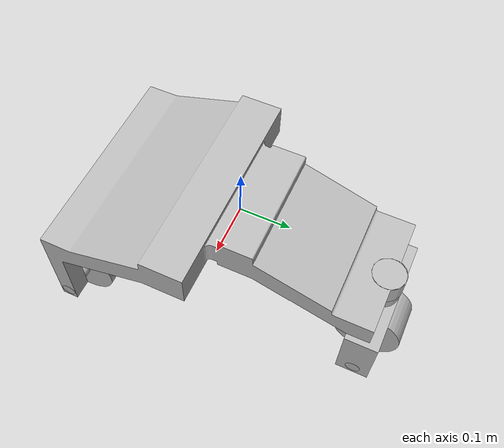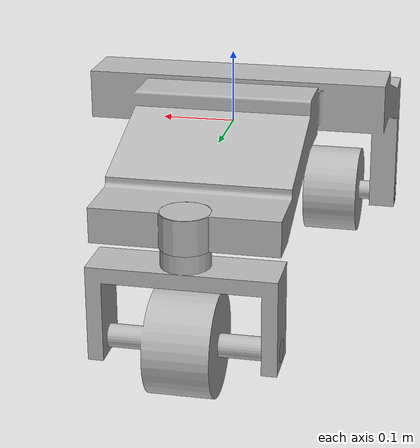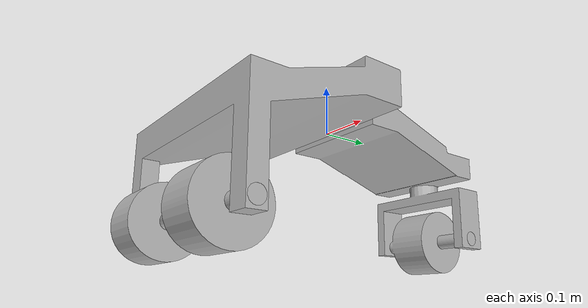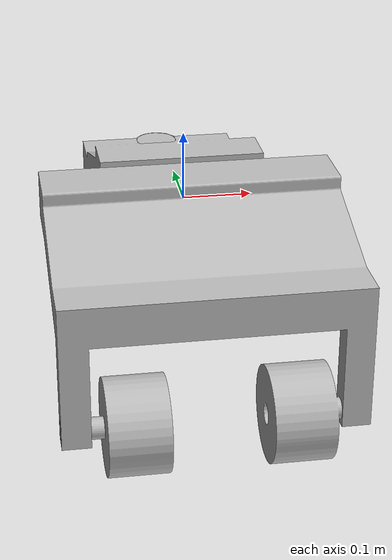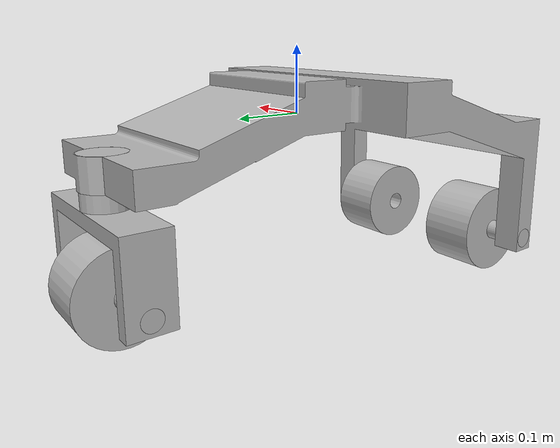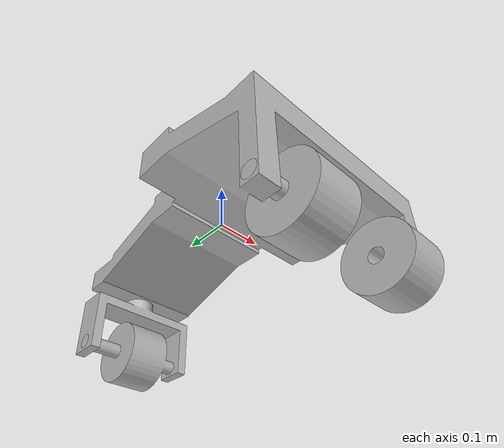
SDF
<?xml version='1.0'?>
<sdf version='1.7'>
  <model name='simple_model'>
    <link name='base_link'>
      <inertial>
        <pose>0 -0.058195 -0.008617 0 -0 0</pose>
        <mass>11.049</mass>
        <inertia>
          <ixx>0.31891</ixx>
          <ixy>1.2437e-08</ixy>
          <ixz>-2.3489e-09</ixz>
          <iyy>0.14912</iyy>
          <iyz>-0.017023</iyz>
          <izz>0.43572</izz>
        </inertia>
      </inertial>
      <self_collide>0</self_collide>
      <enable_wind>0</enable_wind>
      <kinematic>0</kinematic>
      <pose>0 0 0 0 -0 0</pose>
      <visual name='base_link_visual'>
        <pose>0 0 0 0 -0 0</pose>
        <geometry>
          <mesh>
            <scale>1 1 1</scale>
            <uri>/home/chahak/Octo_Crawler/src/Assem2/meshes/base_link.STL</uri>
          </mesh>
        </geometry>
        <material>
          <shader type='pixel'/>
        </material>
        <transparency>0</transparency>
        <cast_shadows>1</cast_shadows>
      </visual>
      <collision name='base_link_collision'>
        <laser_retro>0</laser_retro>
        <max_contacts>10</max_contacts>
        <pose>0 0 0 0 -0 0</pose>
        <geometry>
          <mesh>
            <uri>/home/chahak/Octo_Crawler/src/Assem2/meshes/base_link.STL</uri>
            <scale>1 1 1</scale>
          </mesh>
        </geometry>
        <surface>
          <friction>
            <ode>
              <mu>1</mu>
              <mu2>1</mu2>
              <fdir1>0 0 0</fdir1>
              <slip1>0</slip1>
              <slip2>0</slip2>
            </ode>
            <torsional>
              <coefficient>1</coefficient>
              <patch_radius>0</patch_radius>
              <surface_radius>0</surface_radius>
              <use_patch_radius>1</use_patch_radius>
              <ode>
                <slip>0</slip>
              </ode>
            </torsional>
          </friction>
          <bounce>
            <restitution_coefficient>0</restitution_coefficient>
            <threshold>1e+06</threshold>
          </bounce>
          <contact>
            <collide_without_contact>0</collide_without_contact>
            <collide_without_contact_bitmask>1</collide_without_contact_bitmask>
            <collide_bitmask>1</collide_bitmask>
            <ode>
              <soft_cfm>0</soft_cfm>
              <soft_erp>0.2</soft_erp>
              <kp>1e+13</kp>
              <kd>1</kd>
              <max_vel>0.01</max_vel>
              <min_depth>0</min_depth>
            </ode>
            <bullet>
              <split_impulse>1</split_impulse>
              <split_impulse_penetration_threshold>-0.01</split_impulse_penetration_threshold>
              <soft_cfm>0</soft_cfm>
              <soft_erp>0.2</soft_erp>
              <kp>1e+13</kp>
              <kd>1</kd>
            </bullet>
          </contact>
        </surface>
      </collision>
    </link>
    <link name='front_steering'>
      <pose>0 0.29502 -0.009979 -3.14159 -0 1.5708</pose>
      <inertial>
        <pose>-0 0 0.098632 0 -0 0</pose>
        <mass>0.78452</mass>
        <inertia>
          <ixx>0.0061783</ixx>
          <ixy>-8.2078e-19</ixy>
          <ixz>3.7405e-18</ixz>
          <iyy>0.0018851</iyy>
          <iyz>-1.2848e-19</iyz>
          <izz>0.0048191</izz>
        </inertia>
      </inertial>
      <self_collide>0</self_collide>
      <enable_wind>0</enable_wind>
      <kinematic>0</kinematic>
      <visual name='front_steering_visual'>
        <pose>0 0 0 0 -0 0</pose>
        <geometry>
          <mesh>
            <scale>1 1 1</scale>
            <uri>/home/chahak/Octo_Crawler/src/Assem2/meshes/front_steering.STL</uri>
          </mesh>
        </geometry>
        <material>
          <shader type='pixel'/>
        </material>
        <transparency>0</transparency>
        <cast_shadows>1</cast_shadows>
      </visual>
      <collision name='front_steering_collision'>
        <laser_retro>0</laser_retro>
        <max_contacts>10</max_contacts>
        <pose>0 0 0 0 -0 0</pose>
        <geometry>
          <mesh>
            <uri>/home/chahak/Octo_Crawler/src/Assem2/meshes/front_steering.STL</uri>
            <scale>1 1 1</scale>
          </mesh>
        </geometry>
        <surface>
          <friction>
            <ode>
              <mu>1</mu>
              <mu2>1</mu2>
              <fdir1>0 0 0</fdir1>
              <slip1>0</slip1>
              <slip2>0</slip2>
            </ode>
            <torsional>
              <coefficient>1</coefficient>
              <patch_radius>0</patch_radius>
              <surface_radius>0</surface_radius>
              <use_patch_radius>1</use_patch_radius>
              <ode>
                <slip>0</slip>
              </ode>
            </torsional>
          </friction>
          <bounce>
            <restitution_coefficient>0</restitution_coefficient>
            <threshold>1e+06</threshold>
          </bounce>
          <contact>
            <collide_without_contact>0</collide_without_contact>
            <collide_without_contact_bitmask>1</collide_without_contact_bitmask>
            <collide_bitmask>1</collide_bitmask>
            <ode>
              <soft_cfm>0</soft_cfm>
              <soft_erp>0.2</soft_erp>
              <kp>1e+13</kp>
              <kd>1</kd>
              <max_vel>0.01</max_vel>
              <min_depth>0</min_depth>
            </ode>
            <bullet>
              <split_impulse>1</split_impulse>
              <split_impulse_penetration_threshold>-0.01</split_impulse_penetration_threshold>
              <soft_cfm>0</soft_cfm>
              <soft_erp>0.2</soft_erp>
              <kp>1e+13</kp>
              <kd>1</kd>
            </bullet>
          </contact>
        </surface>
      </collision>
    </link>
    <link name='front_wheel'>
      <pose>-1e-06 0.29502 -0.198859 -1.57071 -1.5389 1.57072</pose>
      <inertial>
        <pose>0 0 0 0 -0 0</pose>
        <mass>1.2533</mass>
        <inertia>
          <ixx>0.0021004</ixx>
          <ixy>8.1315e-20</ixy>
          <ixz>-1.3177e-19</ixz>
          <iyy>0.0021004</iyy>
          <iyz>5.4947e-23</iyz>
          <izz>0.0027449</izz>
        </inertia>
      </inertial>
      <self_collide>0</self_collide>
      <enable_wind>0</enable_wind>
      <kinematic>0</kinematic>
      <visual name='front_wheel_visual'>
        <pose>0 0 0 0 -0 0</pose>
        <geometry>
          <mesh>
            <scale>1 1 1</scale>
            <uri>/home/chahak/Octo_Crawler/src/Assem2/meshes/front_wheel.STL</uri>
          </mesh>
        </geometry>
        <material>
          <shader type='pixel'/>
        </material>
        <transparency>0</transparency>
        <cast_shadows>1</cast_shadows>
      </visual>
      <collision name='front_wheel_collision'>
        <laser_retro>0</laser_retro>
        <max_contacts>10</max_contacts>
        <pose>0 0 0 0 -0 0</pose>
        <geometry>
          <mesh>
            <uri>/home/chahak/Octo_Crawler/src/Assem2/meshes/front_wheel.STL</uri>
            <scale>1 1 1</scale>
          </mesh>
        </geometry>
        <surface>
          <friction>
            <ode>
              <mu>1</mu>
              <mu2>1</mu2>
              <fdir1>0 0 0</fdir1>
              <slip1>0</slip1>
              <slip2>0</slip2>
            </ode>
            <torsional>
              <coefficient>1</coefficient>
              <patch_radius>0</patch_radius>
              <surface_radius>0</surface_radius>
              <use_patch_radius>1</use_patch_radius>
              <ode>
                <slip>0</slip>
              </ode>
            </torsional>
          </friction>
          <bounce>
            <restitution_coefficient>0</restitution_coefficient>
            <threshold>1e+06</threshold>
          </bounce>
          <contact>
            <collide_without_contact>0</collide_without_contact>
            <collide_without_contact_bitmask>1</collide_without_contact_bitmask>
            <collide_bitmask>1</collide_bitmask>
            <ode>
              <soft_cfm>0</soft_cfm>
              <soft_erp>0.2</soft_erp>
              <kp>1e+13</kp>
              <kd>1</kd>
              <max_vel>0.01</max_vel>
              <min_depth>0</min_depth>
            </ode>
            <bullet>
              <split_impulse>1</split_impulse>
              <split_impulse_penetration_threshold>-0.01</split_impulse_penetration_threshold>
              <soft_cfm>0</soft_cfm>
              <soft_erp>0.2</soft_erp>
              <kp>1e+13</kp>
              <kd>1</kd>
            </bullet>
          </contact>
        </surface>
      </collision>
    </link>
    <link name='rear_leftwheel'>
      <pose>-0.068 -0.29004 -0.19886 1.5708 -0.56509 1.5708</pose>
      <inertial>
        <pose>0 0 -0.044459 0 -0 0</pose>
        <mass>1.2533</mass>
        <inertia>
          <ixx>0.020521</ixx>
          <ixy>-3.2526e-10</ixy>
          <ixz>8.0455e-10</ixz>
          <iyy>0.020521</iyy>
          <iyz>-0.013786</iyz>
          <izz>0.027371</izz>
        </inertia>
      </inertial>
      <self_collide>0</self_collide>
      <enable_wind>0</enable_wind>
      <kinematic>0</kinematic>
      <visual name='rear_leftwheel_visual'>
        <pose>0 0 0 0 -0 0</pose>
        <geometry>
          <mesh>
            <scale>1 1 1</scale>
            <uri>/home/chahak/Octo_Crawler/src/Assem2/meshes/rear_leftsteering.STL</uri>
          </mesh>
        </geometry>
        <material>
          <shader type='pixel'/>
        </material>
        <transparency>0</transparency>
        <cast_shadows>1</cast_shadows>
      </visual>
      <collision name='rear_leftwheel_collision'>
        <laser_retro>0</laser_retro>
        <max_contacts>10</max_contacts>
        <pose>0 0 0 0 -0 0</pose>
        <geometry>
          <mesh>
            <uri>/home/chahak/Octo_Crawler/src/Assem2/meshes/rear_leftsteering.STL</uri>
            <scale>1 1 1</scale>
          </mesh>
        </geometry>
        <surface>
          <friction>
            <ode>
              <mu>1</mu>
              <mu2>1</mu2>
              <fdir1>0 0 0</fdir1>
              <slip1>0</slip1>
              <slip2>0</slip2>
            </ode>
            <torsional>
              <coefficient>1</coefficient>
              <patch_radius>0</patch_radius>
              <surface_radius>0</surface_radius>
              <use_patch_radius>1</use_patch_radius>
              <ode>
                <slip>0</slip>
              </ode>
            </torsional>
          </friction>
          <bounce>
            <restitution_coefficient>0</restitution_coefficient>
            <threshold>1e+06</threshold>
          </bounce>
          <contact>
            <collide_without_contact>0</collide_without_contact>
            <collide_without_contact_bitmask>1</collide_without_contact_bitmask>
            <collide_bitmask>1</collide_bitmask>
            <ode>
              <soft_cfm>0</soft_cfm>
              <soft_erp>0.2</soft_erp>
              <kp>1e+13</kp>
              <kd>1</kd>
              <max_vel>0.01</max_vel>
              <min_depth>0</min_depth>
            </ode>
            <bullet>
              <split_impulse>1</split_impulse>
              <split_impulse_penetration_threshold>-0.01</split_impulse_penetration_threshold>
              <soft_cfm>0</soft_cfm>
              <soft_erp>0.2</soft_erp>
              <kp>1e+13</kp>
              <kd>1</kd>
            </bullet>
          </contact>
        </surface>
      </collision>
    </link>
    <link name='rear_rightwheel'>
      <pose>0.068 -0.29004 -0.19886 1.5708 0.077642 -1.5708</pose>
      <inertial>
        <pose>-0 0 -0.044459 0 -0 0</pose>
        <mass>1.2533</mass>
        <inertia>
          <ixx>0.020521</ixx>
          <ixy>-8.1315e-10</ixy>
          <ixz>-8.1715e-10</ixz>
          <iyy>0.020521</iyy>
          <iyz>-1.5541e-12</iyz>
          <izz>0.027371</izz>
        </inertia>
      </inertial>
      <self_collide>0</self_collide>
      <enable_wind>0</enable_wind>
      <kinematic>0</kinematic>
      <visual name='rear_rightwheel_visual'>
        <pose>0 0 0 0 -0 0</pose>
        <geometry>
          <mesh>
            <scale>1 1 1</scale>
            <uri>/home/chahak/Octo_Crawler/src/Assem2/meshes/rear_rightwheel.STL</uri>
          </mesh>
        </geometry>
        <material>
          <shader type='pixel'/>
        </material>
        <transparency>0</transparency>
        <cast_shadows>1</cast_shadows>
      </visual>
      <collision name='rear_rightwheel_collision'>
        <laser_retro>0</laser_retro>
        <max_contacts>10</max_contacts>
        <pose>0 0 0 0 -0 0</pose>
        <geometry>
          <mesh>
            <uri>/home/chahak/Octo_Crawler/src/Assem2/meshes/rear_rightwheel.STL</uri>
            <scale>1 1 1</scale>
          </mesh>
        </geometry>
        <surface>
          <friction>
            <ode>
              <mu>1</mu>
              <mu2>1</mu2>
              <fdir1>0 0 0</fdir1>
              <slip1>0</slip1>
              <slip2>0</slip2>
            </ode>
            <torsional>
              <coefficient>1</coefficient>
              <patch_radius>0</patch_radius>
              <surface_radius>0</surface_radius>
              <use_patch_radius>1</use_patch_radius>
              <ode>
                <slip>0</slip>
              </ode>
            </torsional>
          </friction>
          <bounce>
            <restitution_coefficient>0</restitution_coefficient>
            <threshold>1e+06</threshold>
          </bounce>
          <contact>
            <collide_without_contact>0</collide_without_contact>
            <collide_without_contact_bitmask>1</collide_without_contact_bitmask>
            <collide_bitmask>1</collide_bitmask>
            <ode>
              <soft_cfm>0</soft_cfm>
              <soft_erp>0.2</soft_erp>
              <kp>1e+13</kp>
              <kd>1</kd>
              <max_vel>0.01</max_vel>
              <min_depth>0</min_depth>
            </ode>
            <bullet>
              <split_impulse>1</split_impulse>
              <split_impulse_penetration_threshold>-0.01</split_impulse_penetration_threshold>
              <soft_cfm>0</soft_cfm>
              <soft_erp>0.2</soft_erp>
              <kp>1e+13</kp>
              <kd>1</kd>
            </bullet>
          </contact>
        </surface>
      </collision>
    </link>
    <joint name='joint_1' type='revolute'>
      <parent>base_link</parent>
      <child>front_steering</child>
      <pose>0 -0 0 0 -0 0</pose>
      <axis>
        <xyz>0 0 1</xyz>
        <limit>
          <lower>-6.28</lower>
          <upper>6.28</upper>
          <effort>40</effort>
          <velocity>40</velocity>
        </limit>
        <dynamics>
          <spring_reference>0</spring_reference>
          <spring_stiffness>0</spring_stiffness>
          <damping>0</damping>
          <friction>0</friction>
        </dynamics>
      </axis>
      <physics>
        <ode>
          <limit>
            <cfm>0</cfm>
            <erp>0.2</erp>
          </limit>
          <suspension>
            <cfm>0</cfm>
            <erp>0.2</erp>
          </suspension>
        </ode>
      </physics>
    </joint>
    <joint name='joint_2' type='revolute'>
      <parent>front_steering</parent>
      <child>front_wheel</child>
      <pose>-0 -0 0 0 -0 0</pose>
      <axis>
        <xyz>0 0 -1</xyz>
        <limit>
          <lower>-2e+11</lower>
          <upper>2e+11</upper>
          <effort>40</effort>
          <velocity>40</velocity>
        </limit>
        <dynamics>
          <spring_reference>0</spring_reference>
          <spring_stiffness>0</spring_stiffness>
          <damping>0</damping>
          <friction>0</friction>
        </dynamics>
      </axis>
      <physics>
        <ode>
          <limit>
            <cfm>0</cfm>
            <erp>0.2</erp>
          </limit>
          <suspension>
            <cfm>0</cfm>
            <erp>0.2</erp>
          </suspension>
        </ode>
      </physics>
    </joint>
    <joint name='joint_3' type='revolute'>
      <parent>base_link</parent>
      <child>rear_rightwheel</child>
      <pose>0 0 0 0 -0 0</pose>
      <axis>
        <xyz>0 0 -1</xyz>
        <limit>
          <lower>-2e+14</lower>
          <upper>2e+12</upper>
          <effort>40</effort>
          <velocity>40</velocity>
        </limit>
        <dynamics>
          <spring_reference>0</spring_reference>
          <spring_stiffness>0</spring_stiffness>
          <damping>0.1</damping>
          <friction>0.1</friction>
        </dynamics>
      </axis>
      <physics>
        <ode>
          <limit>
            <cfm>0</cfm>
            <erp>0.2</erp>
          </limit>
          <suspension>
            <cfm>0</cfm>
            <erp>0.2</erp>
          </suspension>
        </ode>
      </physics>
    </joint>
    <joint name='joint_4' type='revolute'>
      <parent>base_link</parent>
      <child>rear_leftwheel</child>
      <pose>0 0 0 0 -0 0</pose>
      <axis>
        <xyz>0 0 -1</xyz>
        <limit>
          <lower>-2e+12</lower>
          <upper>2e+11</upper>
          <effort>40</effort>
          <velocity>40</velocity>
        </limit>
        <dynamics>
          <spring_reference>0</spring_reference>
          <spring_stiffness>0</spring_stiffness>
          <damping>0.1</damping>
          <friction>0.1</friction>
        </dynamics>
      </axis>
      <physics>
        <ode>
          <limit>
            <cfm>0</cfm>
            <erp>0.2</erp>
          </limit>
          <suspension>
            <cfm>0</cfm>
            <erp>0.2</erp>
          </suspension>
        </ode>
      </physics>
    </joint>
    <static>0</static>
    <allow_auto_disable>1</allow_auto_disable>
    <plugin name='gazebo_ros_control' filename='libgazebo_ros_control.so'>
      <robotNamespace>/simple_model</robotNamespace>
    </plugin>
  </model>
</sdf>
